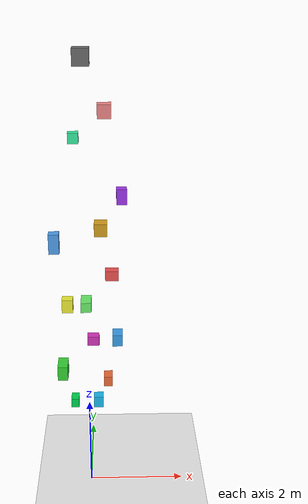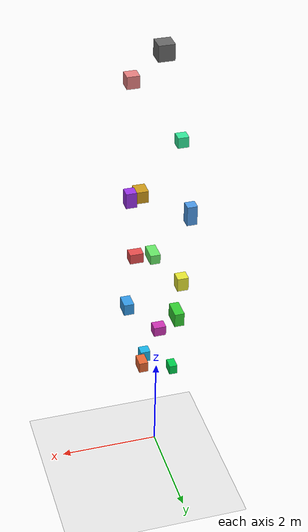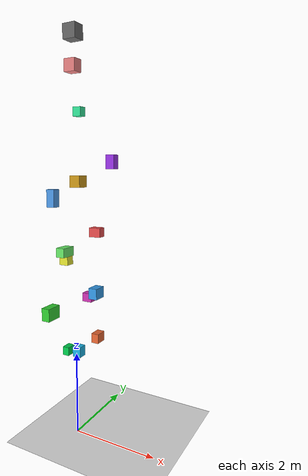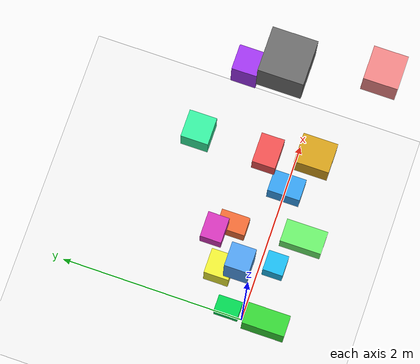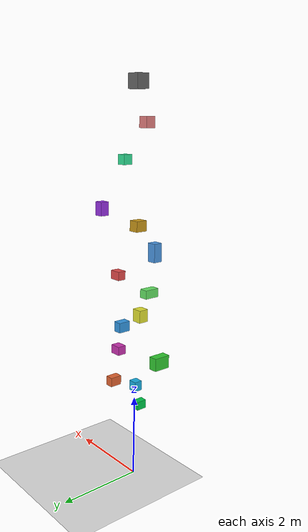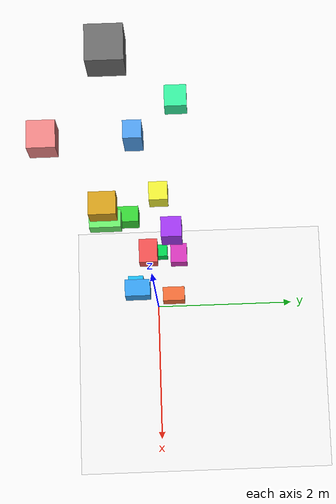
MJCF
<mujoco>
  <option timestep="0.002" gravity="0 0 -9.81" />
  <worldbody>

    <!-- Lighting -->
    <light diffuse="0.6 0.6 0.6" pos="0 0 5" dir="0 0 -1" />
    <light diffuse="0.4 0.4 0.4" pos="2 2 5" dir="-1 -1 -1" />

    <!-- Ground -->
    <geom type="plane" size="5 5 0.1" rgba="0.9 0.9 0.9 1" />

    <!-- Random-looking falling boxes -->
    <!-- Layer 1 -->
    <body pos="-0.3  0.1  2.0"><joint type="free" /><geom
                type="box"
                size=".08 .12 .1"
                rgba="0 0.8 0.3 1"
            /></body>
    <body pos=" 0.2 -0.2  2.2"><joint type="free" /><geom
                type="box"
                size=".1  .1  .12"
                rgba="0.1 0.7 0.9 1"
            /></body>
    <body pos=" 0.4  0.3  2.4"><joint type="free" /><geom
                type="box"
                size=".09 .14 .11"
                rgba="0.9 0.4 0.2 1"
            /></body>

    <!-- Layer 2 -->
    <body pos="-0.5 -0.3  3.0"><joint type="free" /><geom
                type="box"
                size=".1 .2 .15"
                rgba="0.2 0.8 0.2 1"
            /></body>
    <body pos=" 0.1  0.4  3.3"><joint type="free" /><geom
                type="box"
                size=".12 .1 .1"
                rgba="0.8 0.2 0.7 1"
            /></body>
    <body pos=" 0.6 -0.1  3.6"><joint type="free" /><geom
                type="box"
                size=".1 .15 .12"
                rgba="0.2 0.6 0.9 1"
            /></body>

    <!-- Layer 3 -->
    <body pos="-0.4  0.2  4.2"><joint type="free" /><geom
                type="box"
                size=".11 .11 .14"
                rgba="0.9 0.9 0.2 1"
            /></body>
    <body pos=" 0.0 -0.4  4.5"><joint type="free" /><geom
                type="box"
                size=".1 .18 .1"
                rgba="0.4 0.9 0.4 1"
            /></body>
    <body pos=" 0.5  0.1  4.9"><joint type="free" /><geom
                type="box"
                size=".13 .1 .1"
                rgba="0.9 0.3 0.3 1"
            /></body>

    <!-- Layer 4 -->
    <body pos="-0.6  0.0  5.6"><joint type="free" /><geom
                type="box"
                size=".1 .1 .2"
                rgba="0.3 0.6 0.9 1"
            /></body>
    <body pos=" 0.3 -0.3  6.0"><joint type="free" /><geom
                type="box"
                size=".12 .14 .12"
                rgba="0.8 0.6 0.1 1"
            /></body>
    <body pos=" 0.7  0.4  6.4"><joint type="free" /><geom
                type="box"
                size=".1 .1 .15"
                rgba="0.6 0.2 0.9 1"
            /></body>

    <!-- High scatter -->
    <body pos="-0.2  0.5  7.5"><joint type="free" /><geom
                type="box"
                size=".1 .1 .1"
                rgba="0.2 0.9 0.6 1"
            /></body>
    <body pos=" 0.4 -0.6  8.2"><joint type="free" /><geom
                type="box"
                size=".12 .12 .12"
                rgba="0.9 0.5 0.5 1"
            /></body>
    <body pos=" 0.0  0.0  9.0"><joint type="free" /><geom
                type="box"
                size=".15 .15 .15"
                rgba="0.4 0.4 0.4 1"
            /></body>

  </worldbody>
</mujoco>
